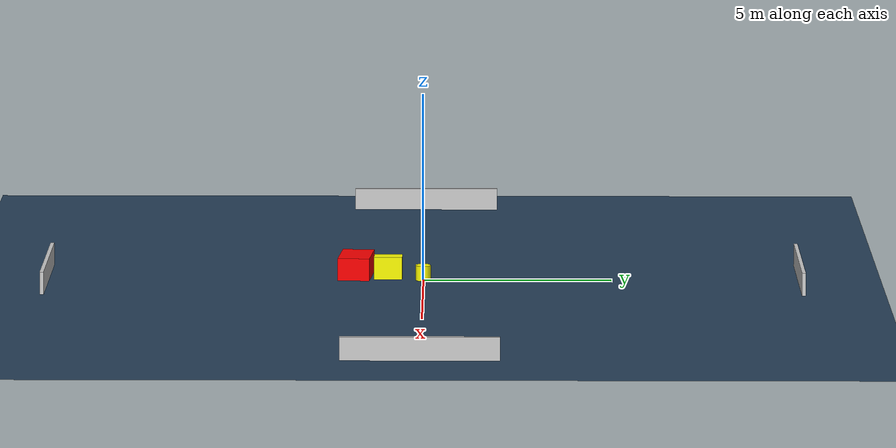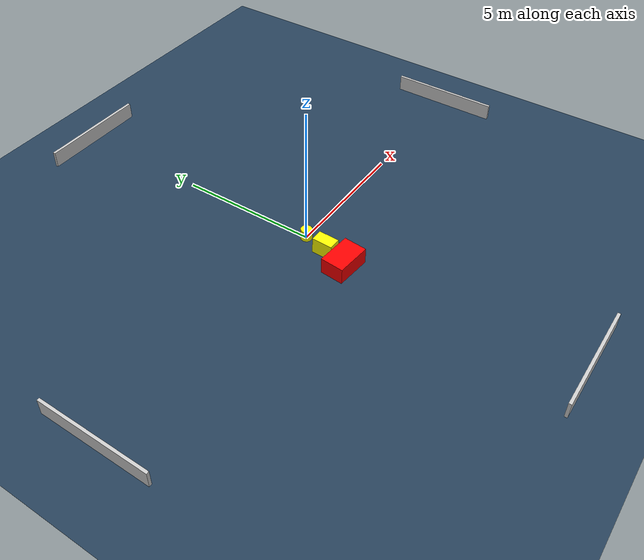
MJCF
<?xml version="1.0" ?>
<mujoco model="generated_environment">
  <option timestep="0.01" integrator="RK4" cone="elliptic"/>
  <default>
    <geom density="1"/>
  </default>
  <asset>
    <texture builtin="gradient" height="3072" name="skybox" rgb1="0.3 0.5 0.7" rgb2="0 0 0" type="skybox" width="512"/>
    <texture builtin="checker" height="300" name="groundplane" rgb1="0.2 0.3 0.4" rgb2="0.1 0.2 0.3" type="2d" width="300"/>
    <material name="groundplane" reflectance="0.2" texrepeat="5 5" texture="groundplane"/>
  </asset>
  <worldbody>
    <light dir="0 0 -1" directional="true" pos="0 0 1.5"/>
    <geom condim="3" friction="0.5 0.005 0.001" material="groundplane" name="floor" pos="0 0 0" size="0 0 0.05" type="plane"/>
    <body name="walls">
      <geom name="wall_1" condim="4" pos="-10.0 0.0 0.3" rgba="0.800000011920929 0.800000011920929 0.800000011920929 1.0" size="0.05 2.0 0.3" type="box"/>
      <geom name="wall_2" condim="4" pos="10.0 0.0 0.3" rgba="0.800000011920929 0.800000011920929 0.800000011920929 1.0" size="0.05 2.0 0.3" type="box"/>
      <geom name="wall_3" condim="4" pos="0.0 -10.0 0.3" rgba="0.800000011920929 0.800000011920929 0.800000011920929 1.0" size="2.0 0.05 0.3" type="box"/>
      <geom name="wall_4" condim="4" pos="0.0 10.0 0.3" rgba="0.800000011920929 0.800000011920929 0.800000011920929 1.0" size="2.0 0.05 0.3" type="box"/>
    </body>
    <body name="robot">
      <joint name="joint_x" type="slide" pos="0 0 0" axis="1 0 0"/>
      <joint name="joint_y" type="slide" pos="0 0 0" axis="0 1 0"/>
      <geom name="robot" type="cylinder" pos="0.0 0.0 0.2" size="0.2 0.2 0.0" mass="5.0" friction="1.0 0.005 0.0001" condim="4" rgba="1.0 1.0 0.0 1.0"/>
    </body>
    <body name="obstacle_1_movable">
      <geom name="obstacle_1_movable" condim="4" pos="-0.2518169424030369 -0.9305862072501241 0.3" euler="0 0 358.64589739032226" friction="0.0 0.005 0.001" rgba="1.0 1.0 0.0 1.0" size="0.22104176953864157 0.37380094247804196 0.3" type="box" mass="0.1"/>
      <joint type="free"/>
    </body>
    <body name="obstacle_2_static">
      <geom name="obstacle_2_static" condim="4" pos="-0.4969765135720628 -1.7935556957335226 0.3" euler="0 0 84.92475876500694" friction="0.0 0.005 0.001" rgba="1.0 0.0 0.0 1.0" size="0.4213532684357808 0.6370583817003787 0.3" type="box"/>
    </body>
  </worldbody>
  <actuator>
    <motor name="actuator_x" joint="joint_x" gear="1" ctrlrange="-1 1"/>
    <motor name="actuator_y" joint="joint_y" gear="1" ctrlrange="-1 1"/>
  </actuator>
</mujoco>
